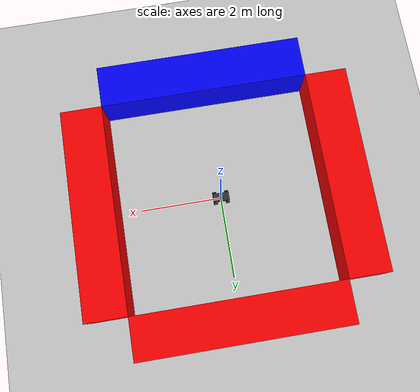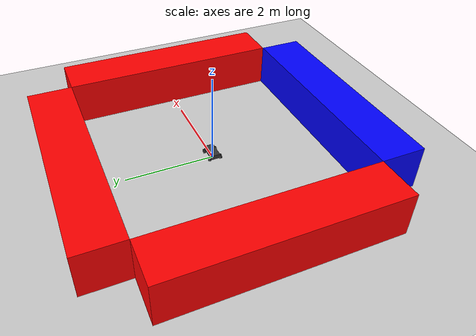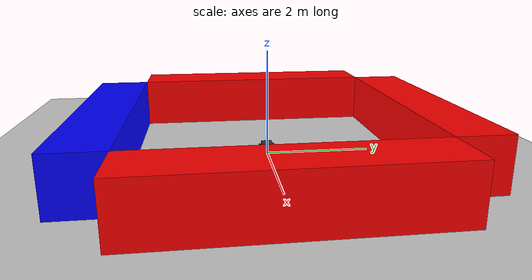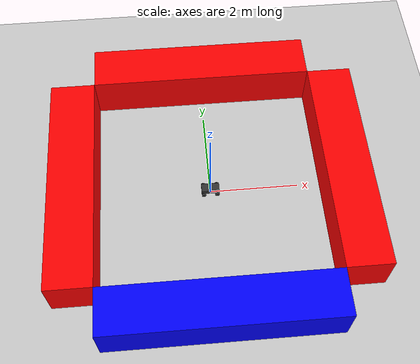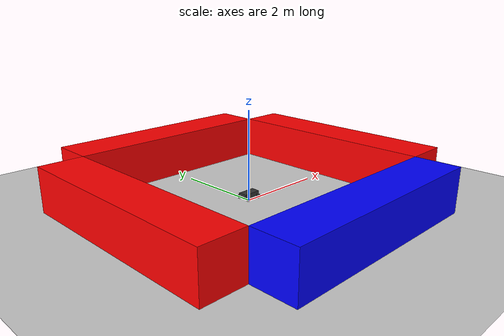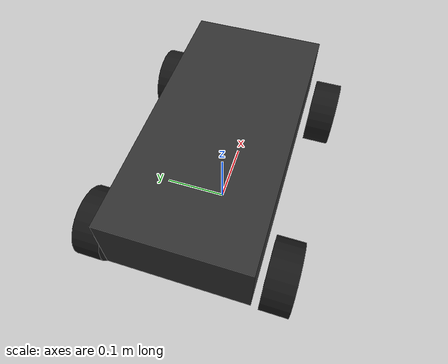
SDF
<?xml version="1.0" ?>
<sdf version="1.9">
  <world name="ackermann_test">
    <physics name="1ms" type="ignored">
      <max_step_size>0.001</max_step_size>
      <real_time_factor>1.0</real_time_factor>
    </physics>

    <plugin filename="gz-sim-physics-system" name="gz::sim::systems::Physics">
    </plugin>
    <plugin filename="gz-sim-sensors-system" name="gz::sim::systems::Sensors">
      <render_engine>ogre2</render_engine>
    </plugin>
    <plugin filename="gz-sim-scene-broadcaster-system" name="gz::sim::systems::SceneBroadcaster">
    </plugin>
    <plugin filename="gz-sim-user-commands-system" name="gz::sim::systems::UserCommands">
    </plugin>
    <plugin filename="gz-sim-imu-system" name="gz::sim::systems::Imu">
    </plugin>

    <!-- Add clock plugin to publish simulation time -->
    <plugin filename="libgz-sim-clock-system.so" name="gz::sim::systems::Clock">
    </plugin>

    <light type="directional" name="sun">
      <cast_shadows>true</cast_shadows>
      <pose>0 0 10 0 0 0</pose>
      <diffuse>0.8 0.8 0.8 1</diffuse>
      <specular>0.2 0.2 0.2 1</specular>
      <attenuation>
        <range>1000</range>
        <constant>0.9</constant>
        <linear>0.01</linear>
        <quadratic>0.001</quadratic>
      </attenuation>
      <direction>-0.5 0.1 -0.9</direction>
    </light>

    <model name="ground_plane">
      <static>true</static>
      <link name="link">
        <collision name="collision">
          <geometry>
            <plane>
              <normal>0 0 1</normal>
              <size>100 100</size>
            </plane>
          </geometry>
        </collision>
        <visual name="visual">
          <geometry>
            <plane>
              <normal>0 0 1</normal>
              <size>100 100</size>
            </plane>
          </geometry>
          <material>
            <ambient>0.8 0.8 0.8 1</ambient>
            <diffuse>0.8 0.8 0.8 1</diffuse>
            <specular>0.8 0.8 0.8 1</specular>
          </material>
        </visual>
      </link>
    </model>

    <!-- Include Ackermann robot model from models directory -->
    <include>
      <uri>model://ackermann_robot</uri>
      <pose>0 0 0.05 0 0 0</pose>
      <name>ackermann_robot</name>
    </include>

    <!-- Add some obstacles -->
    <model name="box1">
      <pose>3 0 0.5 0 0 0</pose>
      <link name="link">
        <collision name="collision">
          <geometry>
            <box>
              <size>1 1 1</size>
            </box>
          </geometry>
        </collision>
        <visual name="visual">
          <geometry>
            <box>
              <size>1 5 1</size>
            </box>
          </geometry>
          <material>
            <ambient>1 0 0 1</ambient>
            <diffuse>1 0 0 1</diffuse>
            <specular>1 0 0 1</specular>
          </material>
        </visual>
      </link>
    </model>

    <model name="box2">
      <pose>-3 0 0.5 0 0 0</pose>
      <link name="link">
        <collision name="collision">
          <geometry>
            <box>
              <size>1 1 1</size>
            </box>
          </geometry>
        </collision>
        <visual name="visual">
          <geometry>
            <box>
              <size>1 5 1</size>
            </box>
          </geometry>
          <material>
            <ambient>1 0 0 1</ambient>
            <diffuse>1 0 0 1</diffuse>
            <specular>1 0 0 1</specular>
          </material>
        </visual>
      </link>
    </model>

    <model name="box3">
      <pose>0 3 0.5 0 0 0</pose>
      <link name="link">
        <collision name="collision">
          <geometry>
            <box>
              <size>1 1 1</size>
            </box>
          </geometry>
        </collision>
        <visual name="visual">
          <geometry>
            <box>
              <size>5 1 1</size>
            </box>
          </geometry>
          <material>
            <ambient>1 0 0 1</ambient>
            <diffuse>1 0 0 1</diffuse>
            <specular>1 0 0 1</specular>
          </material>
        </visual>
      </link>
    </model>

    <model name="box4">
      <pose>0 -3 0.5 0 0 0</pose>
      <link name="link">
        <collision name="collision">
          <geometry>
            <box>
              <size>1 1 1</size>
            </box>
          </geometry>
        </collision>
        <visual name="visual">
          <geometry>
            <box>
              <size>5 1 1</size>
            </box>
          </geometry>
          <material>
            <ambient>0 0 1 1</ambient>
            <diffuse>0 0 1 1</diffuse>
            <specular>0 0 1 1</specular>
          </material>
        </visual>
      </link>
    </model>
  </world>
</sdf>

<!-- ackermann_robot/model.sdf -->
<sdf version="1.9">
  <model name="ackermann_robot">
    <pose>0 0 0.05 0 0 0</pose>
    <!-- Main chassis -->
    <link name="chassis">
      <pose>0 0 0.1 0 0 0</pose>
      <inertial>
        <mass>1.0</mass>
        <inertia>
          <ixx>0.1</ixx>
          <iyy>0.1</iyy>
          <izz>0.1</izz>
          <ixy>0</ixy>
          <ixz>0</ixz>
          <iyz>0</iyz>
        </inertia>
      </inertial>
      <collision name="collision">
        <geometry>
          <box>
            <size>0.4 0.2 0.1</size>
          </box>
        </geometry>
      </collision>
      <visual name="visual">
        <geometry>
          <box>
            <size>0.4 0.2 0.1</size>
          </box>
        </geometry>
        <material>
          <ambient>0.2 0.2 0.2 1.0</ambient>
          <diffuse>0.2 0.2 0.2 1.0</diffuse>
          <specular>0.2 0.2 0.2 1.0</specular>
        </material>
      </visual>

      <!-- Camera sensor -->
      <sensor name="camera" type="camera">
        <pose>0.2 0 0.1 0 0 0</pose>
        <camera>
          <horizontal_fov>1.047</horizontal_fov>
          <image>
            <width>640</width>
            <height>480</height>
          </image>
          <clip>
            <near>0.1</near>
            <far>100</far>
          </clip>
        </camera>
        <always_on>1</always_on>
        <update_rate>30</update_rate>
        <visualize>true</visualize>
        <topic>camera</topic>
      </sensor>

      <!-- Ultrasonic sensor (using ray sensor) -->
      <sensor name="ultrasonic" type="gpu_ray">
        <pose>0.2 0 0.05 0 0 0</pose>
        <ray>
          <scan>
            <horizontal>
              <samples>5</samples>
              <resolution>1</resolution>
              <min_angle>-0.1</min_angle>
              <max_angle>0.1</max_angle>
            </horizontal>
          </scan>
          <range>
            <min>0.05</min>
            <max>5.0</max>
            <resolution>0.01</resolution>
          </range>
        </ray>
        <always_on>1</always_on>
        <update_rate>10</update_rate>
        <visualize>true</visualize>
        <topic>ultrasonic</topic>
      </sensor>
    </link>

    <!-- Front left wheel -->
    <link name="front_left_wheel">
      <pose>0.15 0.13 0.05 0 0 0</pose>
      <inertial>
        <mass>0.5</mass>
        <inertia>
          <ixx>0.01</ixx>
          <iyy>0.01</iyy>
          <izz>0.01</izz>
          <ixy>0</ixy>
          <ixz>0</ixz>
          <iyz>0</iyz>
        </inertia>
      </inertial>
      <collision name="collision">
        <pose>0 0 0 1.5707 0 0</pose>
        <geometry>
          <cylinder>
            <radius>0.05</radius>
            <length>0.04</length>
          </cylinder>
        </geometry>
      </collision>
      <visual name="visual">
        <pose>0 0 0 1.5707 0 0</pose>
        <geometry>
          <cylinder>
            <radius>0.05</radius>
            <length>0.04</length>
          </cylinder>
        </geometry>
        <material>
          <ambient>0.1 0.1 0.1 1</ambient>
          <diffuse>0.1 0.1 0.1 1</diffuse>
          <specular>0.1 0.1 0.1 1</specular>
        </material>
      </visual>
    </link>

    <!-- Front left steering link -->
    <link name="front_left_steering_link">
      <pose>0.15 0.13 0.05 0 0 0</pose>
      <inertial>
        <mass>0.1</mass>
        <inertia>
          <ixx>0.001</ixx>
          <iyy>0.001</iyy>
          <izz>0.001</izz>
          <ixy>0</ixy>
          <ixz>0</ixz>
          <iyz>0</iyz>
        </inertia>
      </inertial>
    </link>

    <!-- Front right wheel -->
    <link name="front_right_wheel">
      <pose>0.15 -0.13 0.05 0 0 0</pose>
      <inertial>
        <mass>0.5</mass>
        <inertia>
          <ixx>0.01</ixx>
          <iyy>0.01</iyy>
          <izz>0.01</izz>
          <ixy>0</ixy>
          <ixz>0</ixz>
          <iyz>0</iyz>
        </inertia>
      </inertial>
      <collision name="collision">
        <pose>0 0 0 1.5707 0 0</pose>
        <geometry>
          <cylinder>
            <radius>0.05</radius>
            <length>0.04</length>
          </cylinder>
        </geometry>
      </collision>
      <visual name="visual">
        <pose>0 0 0 1.5707 0 0</pose>
        <geometry>
          <cylinder>
            <radius>0.05</radius>
            <length>0.04</length>
          </cylinder>
        </geometry>
        <material>
          <ambient>0.1 0.1 0.1 1</ambient>
          <diffuse>0.1 0.1 0.1 1</diffuse>
          <specular>0.1 0.1 0.1 1</specular>
        </material>
      </visual>
    </link>

    <!-- Front right steering link -->
    <link name="front_right_steering_link">
      <pose>0.15 -0.13 0.05 0 0 0</pose>
      <inertial>
        <mass>0.1</mass>
        <inertia>
          <ixx>0.001</ixx>
          <iyy>0.001</iyy>
          <izz>0.001</izz>
          <ixy>0</ixy>
          <ixz>0</ixz>
          <iyz>0</iyz>
        </inertia>
      </inertial>
    </link>

    <!-- Rear left wheel -->
    <link name="rear_left_wheel">
      <pose>-0.15 0.13 0.05 0 0 0</pose>
      <inertial>
        <mass>0.5</mass>
        <inertia>
          <ixx>0.01</ixx>
          <iyy>0.01</iyy>
          <izz>0.01</izz>
          <ixy>0</ixy>
          <ixz>0</ixz>
          <iyz>0</iyz>
        </inertia>
      </inertial>
      <collision name="collision">
        <pose>0 0 0 1.5707 0 0</pose>
        <geometry>
          <cylinder>
            <radius>0.05</radius>
            <length>0.04</length>
          </cylinder>
        </geometry>
      </collision>
      <visual name="visual">
        <pose>0 0 0 1.5707 0 0</pose>
        <geometry>
          <cylinder>
            <radius>0.05</radius>
            <length>0.04</length>
          </cylinder>
        </geometry>
        <material>
          <ambient>0.1 0.1 0.1 1</ambient>
          <diffuse>0.1 0.1 0.1 1</diffuse>
          <specular>0.1 0.1 0.1 1</specular>
        </material>
      </visual>
    </link>

    <!-- Rear right wheel -->
    <link name="rear_right_wheel">
      <pose>-0.15 -0.13 0.05 0 0 0</pose>
      <inertial>
        <mass>0.5</mass>
        <inertia>
          <ixx>0.01</ixx>
          <iyy>0.01</iyy>
          <izz>0.01</izz>
          <ixy>0</ixy>
          <ixz>0</ixz>
          <iyz>0</iyz>
        </inertia>
      </inertial>
      <collision name="collision">
        <pose>0 0 0 1.5707 0 0</pose>
        <geometry>
          <cylinder>
            <radius>0.05</radius>
            <length>0.04</length>
          </cylinder>
        </geometry>
      </collision>
      <visual name="visual">
        <pose>0 0 0 1.5707 0 0</pose>
        <geometry>
          <cylinder>
            <radius>0.05</radius>
            <length>0.04</length>
          </cylinder>
        </geometry>
        <material>
          <ambient>0.1 0.1 0.1 1</ambient>
          <diffuse>0.1 0.1 0.1 1</diffuse>
          <specular>0.1 0.1 0.1 1</specular>
        </material>
      </visual>
    </link>

    <!-- Front left steering hinge -->
    <joint name="front_left_steer_joint" type="revolute">
      <parent>chassis</parent>
      <child>front_left_steering_link</child>
      <axis>
        <xyz>0 0 1</xyz>
        <limit>
          <lower>-0.5</lower>
          <upper>0.5</upper>
          <effort>1000000</effort>
        </limit>
      </axis>
    </joint>

    <!-- Front right steering hinge -->
    <joint name="front_right_steer_joint" type="revolute">
      <parent>chassis</parent>
      <child>front_right_steering_link</child>
      <axis>
        <xyz>0 0 1</xyz>
        <limit>
          <lower>-0.5</lower>
          <upper>0.5</upper>
          <effort>1000000</effort>
        </limit>
      </axis>
    </joint>

    <!-- Front left wheel rotation joint -->
    <joint name="front_left_wheel_joint" type="revolute">
      <parent>front_left_steering_link</parent>
      <child>front_left_wheel</child>
      <axis>
        <xyz>0 1 0</xyz>
        <limit>
          <effort>1000000</effort>
        </limit>
        <dynamics>
          <friction>0.01</friction>
          <damping>0.05</damping>
        </dynamics>
      </axis>
    </joint>

    <!-- Front right wheel rotation joint -->
    <joint name="front_right_wheel_joint" type="revolute">
      <parent>front_right_steering_link</parent>
      <child>front_right_wheel</child>
      <axis>
        <xyz>0 1 0</xyz>
        <limit>
          <effort>1000000</effort>
        </limit>
        <dynamics>
          <friction>0.01</friction>
          <damping>0.05</damping>
        </dynamics>
      </axis>
    </joint>

    <!-- Rear left wheel joint -->
    <joint name="rear_left_wheel_joint" type="revolute">
      <parent>chassis</parent>
      <child>rear_left_wheel</child>
      <axis>
        <xyz>0 1 0</xyz>
        <limit>
          <effort>1000000</effort>
        </limit>
        <dynamics>
          <friction>0.01</friction>
          <damping>0.05</damping>
        </dynamics>
      </axis>
    </joint>

    <!-- Rear right wheel joint -->
    <joint name="rear_right_wheel_joint" type="revolute">
      <parent>chassis</parent>
      <child>rear_right_wheel</child>
      <axis>
        <xyz>0 1 0</xyz>
        <limit>
          <effort>1000000</effort>
        </limit>
        <dynamics>
          <friction>0.01</friction>
          <damping>0.05</damping>
        </dynamics>
      </axis>
    </joint>

    <!-- Ackermann steering plugin -->
    <plugin filename="libgz-sim8-ackermann-steering-system.so" name="gz::sim::systems::AckermannSteering">
      <left_joint>front_left_wheel_joint</left_joint>
      <left_joint>rear_left_wheel_joint</left_joint>
      <right_joint>front_right_wheel_joint</right_joint>
      <right_joint>rear_right_wheel_joint</right_joint>
      <left_steering_joint>front_left_steer_joint</left_steering_joint>
      <right_steering_joint>front_right_steer_joint</right_steering_joint>
      <kingpin_width>0.26</kingpin_width>
      <steering_limit>0.5</steering_limit>
      <wheel_base>0.3</wheel_base>
      <wheel_separation>0.26</wheel_separation>
      <wheel_radius>0.05</wheel_radius>
      <wheel_torque>20.0</wheel_torque>
      <cmd_vel_topic>/model/ackermann_robot/cmd_vel</cmd_vel_topic>
      <min_velocity>-2</min_velocity>
      <max_velocity>2</max_velocity>
      <min_acceleration>-3</min_acceleration>
      <max_acceleration>3</max_acceleration>
    </plugin>
  </model>
</sdf>
